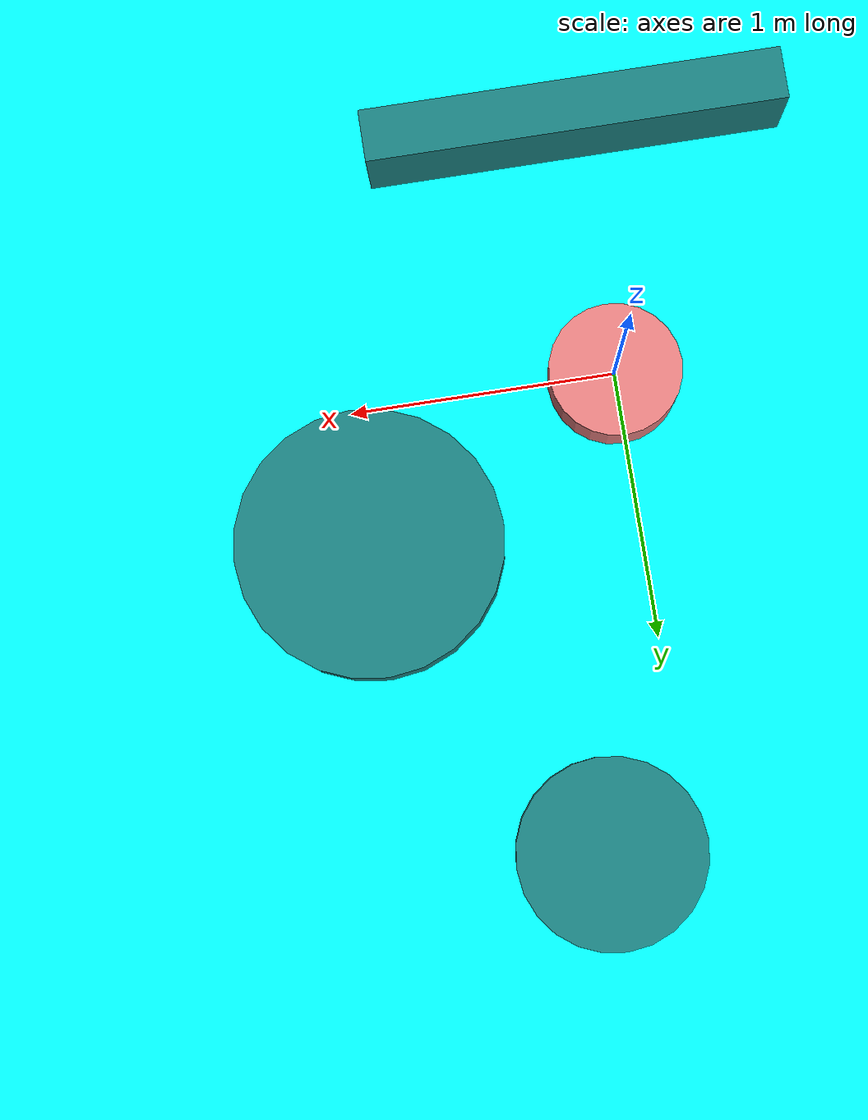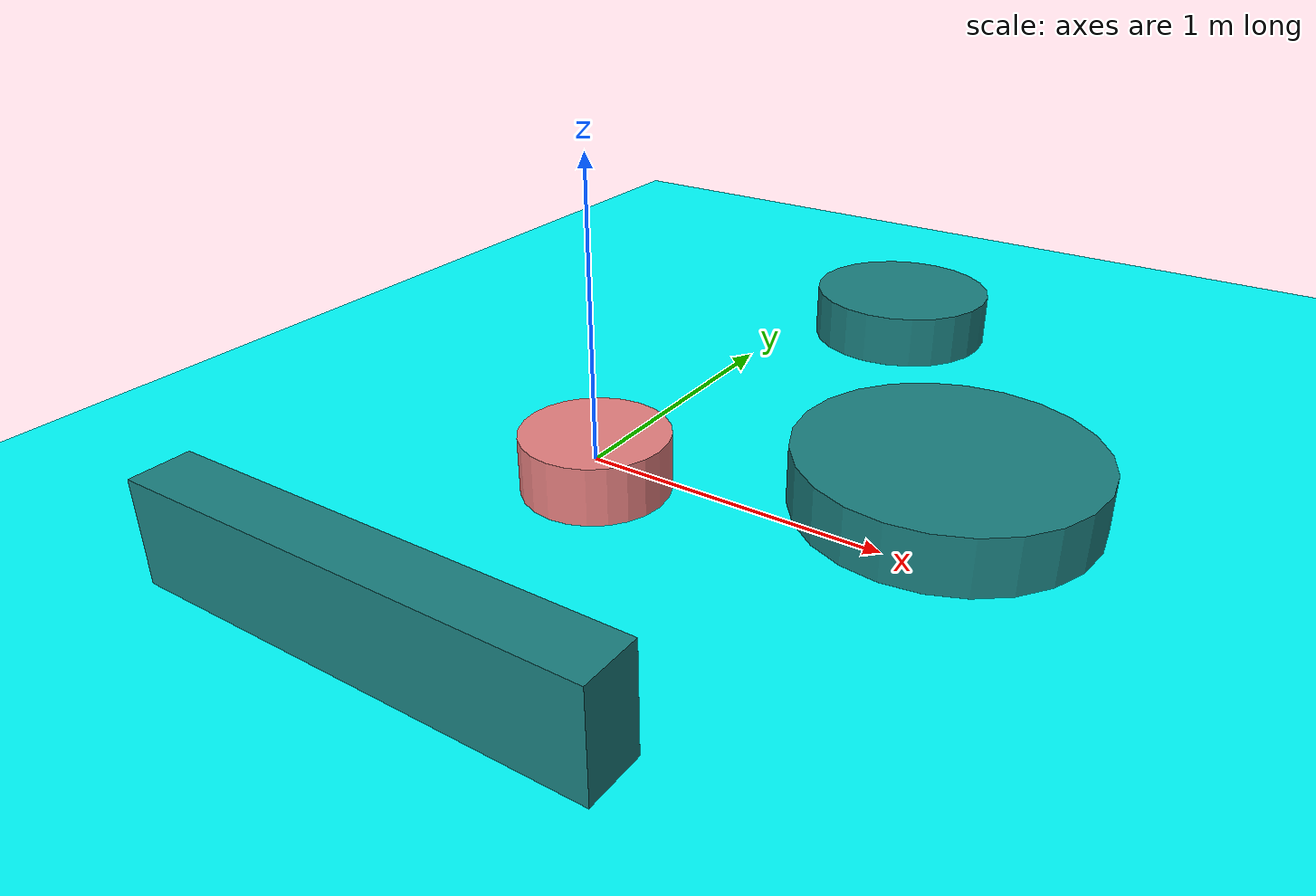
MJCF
<mujoco model="static_obstacle">
  <option timestep="0.02" />
  <size nuserdata="4"/>

  <asset>
    <texture name="blue_grid" type="2d" builtin="checker" rgb1=".02 .14 .44" rgb2=".27 .55 1" width="300" height="300" mark="edge" markrgb="1 1 1"/>
    <material name="blue_grid" texture="blue_grid" texrepeat="1 1" texuniform="true" reflectance=".2"/>
  </asset>

  <default>
    <default class="slider">
      <position kp="10" ctrlrange="-10 10" forcerange="-1000 1000"/>
    </default>
  </default>

  <worldbody>
    <body>
      <geom mass="0" name="floor" pos="0 0 -0.25" condim="3" size="10.0 10.0 0.10" rgba="0 1 1 1" type="box" material="blue_grid"/>
    </body>

    <geom name="obstacle1" type="cylinder" size="0.5 0.1" mass="1" rgba=".1 .5 .5 1" friction="0" pos="1 0.5 0" group="2"/>
    <geom name="obstacle2" type="cylinder" size="0.35 0.1" mass="1" rgba=".1 .5 .5 1" friction="0" pos="0.3 1.75 0" group="2"/>
    <geom name="obstacle3" type="box" size="0.8 0.1 0.2" mass="1" rgba=".1 .5 .5 1" friction="0" pos="0 -1 0" group="2"/>

    <body name="robot" pos="0 0 0">
      <joint name="slider_x" damping="2" type="slide" axis="1 0 0" />
      <joint name="slider_y" damping="2" type="slide" axis="0 1 0" />
      <geom name="robot" type="cylinder" size="0.25 0.1" mass="1" rgba=".9 .5 .5 1" friction="0"/>
      <site pos="0 0 0.15" name="robot_site"/>
    </body>

  </worldbody>

  <actuator>
    <position name="actuator_robot_x" joint="slider_x" class="slider" />
    <position name="actuator_robot_y" joint="slider_y" class="slider" />
  </actuator>

  <sensor>
    <framepos name="trace_robot" objtype="site" objname="robot_site"/>
  </sensor>

</mujoco>
